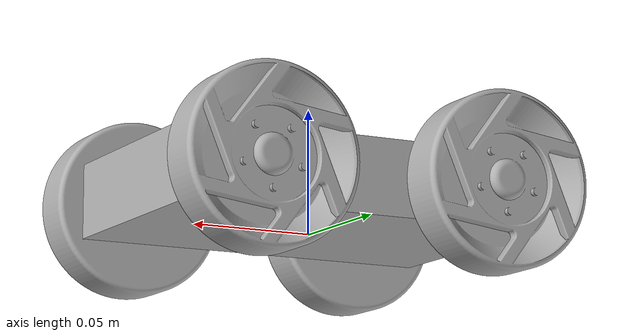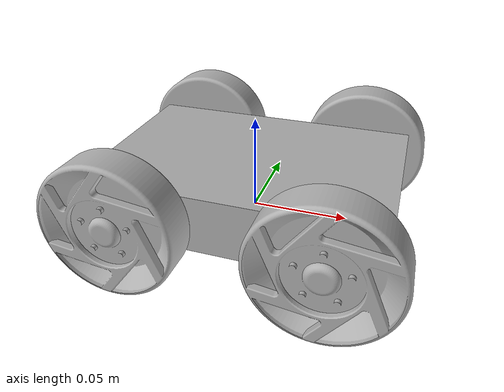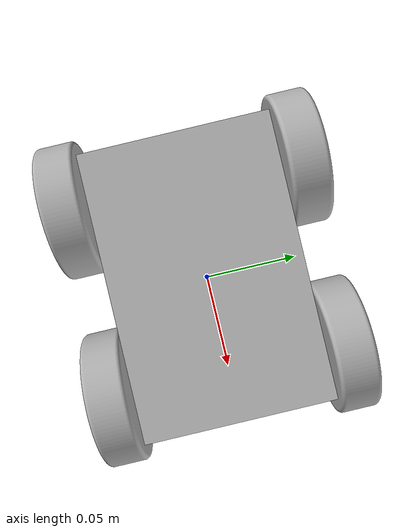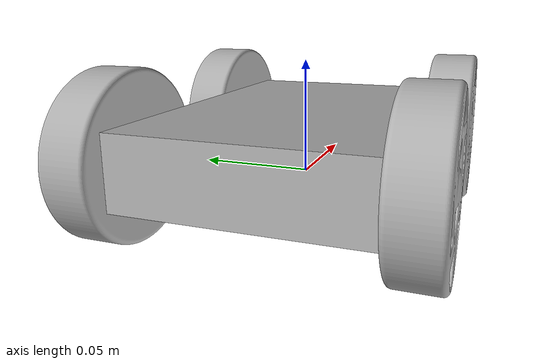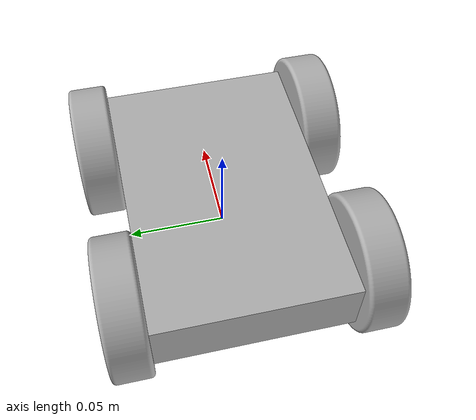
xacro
<?xml version="1.0" ?>
<robot name="carrito_prueba" xmlns:xacro="http://www.ros.org/wiki/xacro">

<xacro:include filename="$(find carrito_prueba_description)/urdf/materials.xacro" />
<xacro:include filename="$(find carrito_prueba_description)/urdf/carrito_prueba.ros2control" />
<xacro:include filename="$(find carrito_prueba_description)/urdf/carrito_prueba.gazebo" />

<link name="base_footprint"/>

  <joint name="base_footprint_joint" type="fixed">
    <parent link="base_footprint"/>
    <child link="base_link"/>
    <origin xyz="0 0 0" rpy="0 0 0"/>
  </joint>

<link name="base_link">
  <inertial>
    <origin xyz="-1.007034455251554e-17 0.0 0.01500000000077751" rpy="0 0 0"/>
    <mass value="3.5448307511653376"/>
    <inertia ixx="0.003243" iyy="0.006919" izz="0.009632" ixy="0.0" iyz="0.0" ixz="-0.0"/>
  </inertial>
  <visual>
    <origin xyz="0 0 0" rpy="0 0 0"/>
    <geometry>
      <mesh filename="file://$(find carrito_prueba_description)/meshes/base_link.stl" scale="0.001 0.001 0.001"/>
    </geometry>
    <material name="silver"/>
  </visual>
  <collision>
    <origin xyz="0 0 0" rpy="0 0 0"/>
    <geometry>
      <mesh filename="file://$(find carrito_prueba_description)/meshes/base_link.stl" scale="0.001 0.001 0.001"/>
    </geometry>
  </collision>
</link>

<link name="llanta_2_1">
  <inertial>
    <origin xyz="4.614364446098307e-14 -0.0053405414104664845 2.2353728243440507e-10" rpy="0 0 0"/>
    <mass value="0.41532869125794636"/>
    <inertia ixx="0.000152" iyy="0.000281" izz="0.000152" ixy="0.0" iyz="0.0" ixz="0.0"/>
  </inertial>
  <visual>
    <origin xyz="-0.05 0.0525 -0.015" rpy="0 0 0"/>
    <geometry>
      <mesh filename="file://$(find carrito_prueba_description)/meshes/llanta_2_1.stl" scale="0.001 0.001 0.001"/>
    </geometry>
    <material name="silver"/>
  </visual>
  <collision>
    <origin xyz="-0.05 0.0525 -0.015" rpy="0 0 0"/>
    <geometry>
      <mesh filename="file://$(find carrito_prueba_description)/meshes/llanta_2_1.stl" scale="0.001 0.001 0.001"/>
    </geometry>
  </collision>
</link>

<link name="llanta_1_1">
  <inertial>
    <origin xyz="4.9911463850804694e-14 -0.005340541410466471 2.2351152526023377e-10" rpy="0 0 0"/>
    <mass value="0.41532869125794636"/>
    <inertia ixx="0.000152" iyy="0.000281" izz="0.000152" ixy="0.0" iyz="0.0" ixz="-0.0"/>
  </inertial>
  <visual>
    <origin xyz="0.05 0.0525 -0.015" rpy="0 0 0"/>
    <geometry>
      <mesh filename="file://$(find carrito_prueba_description)/meshes/llanta_1_1.stl" scale="0.001 0.001 0.001"/>
    </geometry>
    <material name="silver"/>
  </visual>
  <collision>
    <origin xyz="0.05 0.0525 -0.015" rpy="0 0 0"/>
    <geometry>
      <mesh filename="file://$(find carrito_prueba_description)/meshes/llanta_1_1.stl" scale="0.001 0.001 0.001"/>
    </geometry>
  </collision>
</link>

<link name="llanta_3_1">
  <inertial>
    <origin xyz="-4.547057175230407e-14 0.0053405414104664845 2.2353861990620505e-10" rpy="0 0 0"/>
    <mass value="0.41532869125794636"/>
    <inertia ixx="0.000152" iyy="0.000281" izz="0.000152" ixy="0.0" iyz="-0.0" ixz="-0.0"/>
  </inertial>
  <visual>
    <origin xyz="-0.05 -0.0525 -0.015" rpy="0 0 0"/>
    <geometry>
      <mesh filename="file://$(find carrito_prueba_description)/meshes/llanta_3_1.stl" scale="0.001 0.001 0.001"/>
    </geometry>
    <material name="silver"/>
  </visual>
  <collision>
    <origin xyz="-0.05 -0.0525 -0.015" rpy="0 0 0"/>
    <geometry>
      <mesh filename="file://$(find carrito_prueba_description)/meshes/llanta_3_1.stl" scale="0.001 0.001 0.001"/>
    </geometry>
  </collision>
</link>

<link name="llanta_4_1">
  <inertial>
    <origin xyz="1.942890293094024e-14 0.005340541410466457 2.235635721686835e-10" rpy="0 0 0"/>
    <mass value="0.41532869125794636"/>
    <inertia ixx="0.000152" iyy="0.000281" izz="0.000152" ixy="-0.0" iyz="-0.0" ixz="0.0"/>
  </inertial>
  <visual>
    <origin xyz="0.05 -0.0525 -0.015" rpy="0 0 0"/>
    <geometry>
      <mesh filename="file://$(find carrito_prueba_description)/meshes/llanta_4_1.stl" scale="0.001 0.001 0.001"/>
    </geometry>
    <material name="silver"/>
  </visual>
  <collision>
    <origin xyz="0.05 -0.0525 -0.015" rpy="0 0 0"/>
    <geometry>
      <mesh filename="file://$(find carrito_prueba_description)/meshes/llanta_4_1.stl" scale="0.001 0.001 0.001"/>
    </geometry>
  </collision>
</link>

<joint name="joint1" type="continuous">
  <origin xyz="0.05 -0.0525 0.015" rpy="0 0 0"/>
  <parent link="base_link"/>
  <child link="llanta_2_1"/>
  <axis xyz="0.0 1.0 0.0"/>
</joint>

<joint name="joint2" type="continuous">
  <origin xyz="-0.05 -0.0525 0.015" rpy="0 0 0"/>
  <parent link="base_link"/>
  <child link="llanta_1_1"/>
  <axis xyz="0.0 1.0 0.0"/>
</joint>

<joint name="joint3" type="continuous">
  <origin xyz="0.05 0.0525 0.015" rpy="0 0 0"/>
  <parent link="base_link"/>
  <child link="llanta_3_1"/>
  <axis xyz="0.0 1.0 0.0"/>
</joint>

<joint name="joint4" type="continuous">
  <origin xyz="-0.05 0.0525 0.015" rpy="0 0 0"/>
  <parent link="base_link"/>
  <child link="llanta_4_1"/>
  <axis xyz="0.0 1.0 0.0"/>
</joint>

</robot>

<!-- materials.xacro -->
<robot name="carrito_prueba" xmlns:xacro="http://www.ros.org/wiki/xacro" >

<material name="silver">
  <color rgba="0.700 0.700 0.700 1.000"/>
</material>

</robot>

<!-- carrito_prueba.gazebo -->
<robot name="carrito_prueba" xmlns:xacro="http://www.ros.org/wiki/xacro" >

<xacro:property name="body_color" value="Gazebo/Silver" />

<gazebo reference="base_link">
  <material>${body_color}</material>
  <mu1>0.2</mu1>
  <mu2>0.2</mu2>
  <self_collide>true</self_collide>
  <gravity>true</gravity>
</gazebo>

<gazebo reference="llanta_2_1">
  <material>${body_color}</material>
  <mu1>0.2</mu1>
  <mu2>0.2</mu2>
  <self_collide>true</self_collide>
</gazebo>

<gazebo reference="llanta_1_1">
  <material>${body_color}</material>
  <mu1>0.2</mu1>
  <mu2>0.2</mu2>
  <self_collide>true</self_collide>
</gazebo>

<gazebo reference="llanta_3_1">
  <material>${body_color}</material>
  <mu1>0.2</mu1>
  <mu2>0.2</mu2>
  <self_collide>true</self_collide>
</gazebo>

<gazebo reference="llanta_4_1">
  <material>${body_color}</material>
  <mu1>0.2</mu1>
  <mu2>0.2</mu2>
  <self_collide>true</self_collide>
</gazebo>

<gazebo>
  <plugin
      filename="libgz_ros2_control-system.so"
      name="gz_ros2_control::GazeboSimROS2ControlPlugin">

    <parameters>
      $(find carrito_prueba_description)/config/ros2_controller.yaml
    </parameters>

  </plugin>
</gazebo>

</robot>
